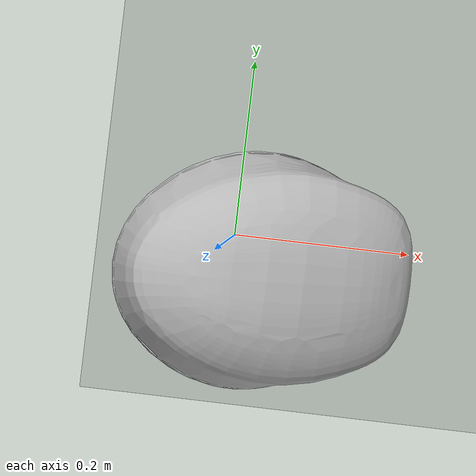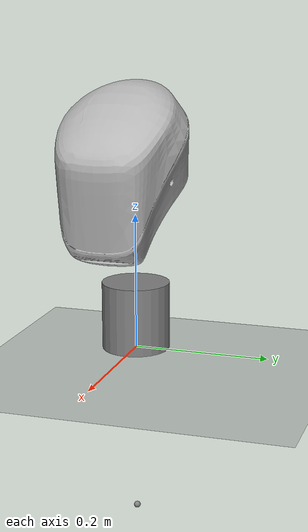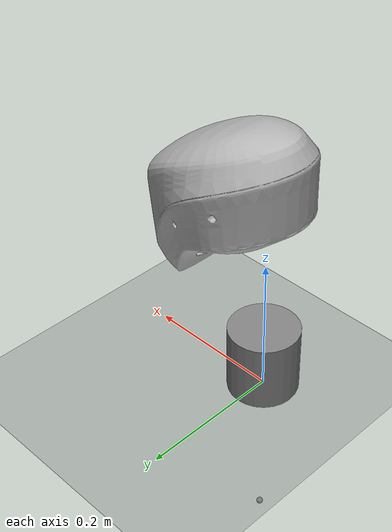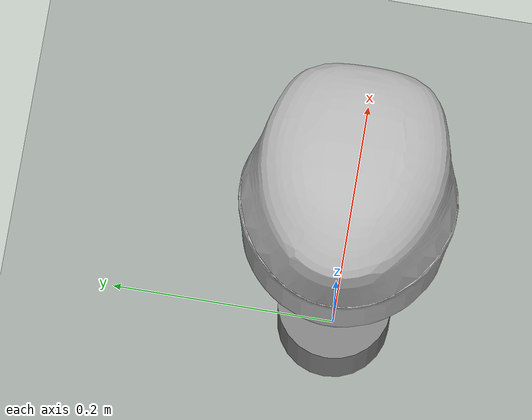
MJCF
<mujoco model="Alexander">
  <default>
    <joint limited="true" damping="0.01" armature="0.01" frictionloss="0.01" />
    <geom condim="4" contype="1" conaffinity="15" friction="0.9 0.2 0.2" solref="0.001 2" />
    <motor ctrllimited="true" />
    <equality solref="0.001 2" />
    <default class="visualgeom">
      <geom material="visualgeom" condim="1" contype="0" conaffinity="0" />
    </default>
  </default>

  <compiler angle="radian" meshdir="../meshes/" eulerseq="zyx" autolimits="true" />

  <asset>
    <texture name="texplane" type="2d" builtin="checker" rgb1=".0 .0 .0" rgb2=".8 .8 .8" width="100" height="100" />
    <material name="matplane" reflectance="0." texture="texplane" texrepeat="1 1" texuniform="true" />
    <material name="gray" rgba="0.5 0.5 0.5 1.0" />
    <material name="default_material" rgba="0.7 0.7 0.7 1" />
    <mesh name="head.obj" file="head.obj" />
  </asset>

  <worldbody>
    <light directional="true" diffuse="0.4 0.4 0.4" specular="0.1 0.1 0.1" pos="0 0 5.0" dir="0 0 -1" castshadow="false" />
    <light directional="true" diffuse="0.6 0.6 0.6" specular="0.2 0.2 0.2" pos="0 0 4" dir="0 0 -1" />
    <geom name="ground" type="plane" pos="0 0 0" size="10 10 0.001" quat="1 0 0 0" material="matplane" condim="3" conaffinity="15" />
    <body name="root" pos="0 0 -0.257953" quat="1 0 0 0">
      <freejoint name="root" />
      <site name="root_site" pos="0 0 0" quat="1 0 0 0" />
      <body name="TORSO_LINK" pos="0 0 0" quat="1 0 0 0">
        <inertial pos="0 0 0" quat="1.0 0.0 0.0 0.0" mass="0.001" diaginertia="1e-05 1e-05 1e-05" />
        <body name="NECK_Z_LINK" pos="0 0 0.307953" quat="1.0 0.0 0.0 0.0">
          <joint name="NECK_Z" type="hinge" range="-1.5708 1.5708" axis="0 0 1" />
          <inertial pos="0.007143 0.006943 0.109823" quat="1.0 0.0 0.0 0.0" mass="1.141" diaginertia="0.007475898 0.007407578 0.00109269" />
          <geom name="NECK_Z_LINK_visual_0" pos="0 0 0.0" quat="1.0 0.0 0.0 0.0" material="gray" type="cylinder" size="0.05 0.05" />
          <body name="HEAD_LINK" pos="0.025 0.01 0.207252" quat="1.0 0.0 0.0 0.0">
            <joint name="NECK_Y" type="hinge" range="-1.0472 1.0472" axis="0 1 0" />
            <inertial pos="0.03237 -0.013568 0.007163" quat="1.0 0.0 0.0 0.0" mass="1.677" diaginertia="0.006026191 0.008182071 0.00644909" />
            <geom name="HEAD_LINK_visual_0" pos="0.0 0.0 0.0" quat="1.0 0.0 0.0 0.0" material="default_material" type="mesh" mesh="head.obj" />
          </body>
        </body>
      </body>
    </body>
  </worldbody>

  <actuator>
    <position name="NECK_Z_ctrl" joint="NECK_Z" kp="40.00000000" kv="2.00000000" forcerange="-20.00000000 20.00000000" forcelimited="true" ctrlrange="-1.5708 1.5708" ctrllimited="true" />
    <position name="NECK_Y_ctrl" joint="NECK_Y" kp="40.00000000" kv="2.00000000" forcerange="-20.00000000 20.00000000" forcelimited="true" ctrlrange="-1.0472 1.0472" ctrllimited="true" />
  </actuator>

  <sensor>
    <framepos name="base_link_pos" objtype="site" objname="root_site" />
    <framequat name="base_link_quat" objtype="site" objname="root_site" />
    <framelinvel name="base_link_vel" objtype="site" objname="root_site" />
    <frameangvel name="base_link_ang_vel" objtype="site" objname="root_site" />
  </sensor>
</mujoco>
